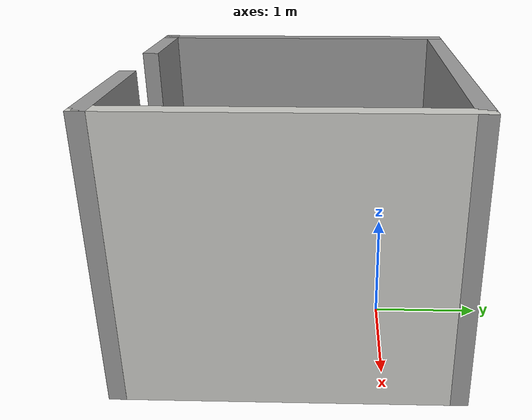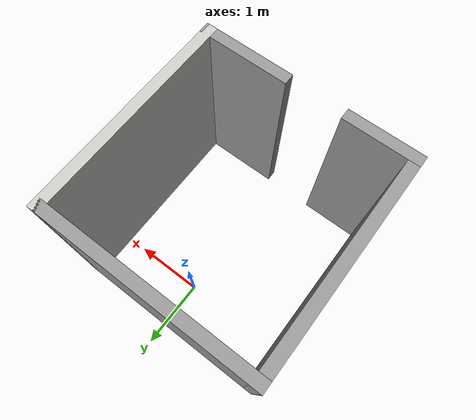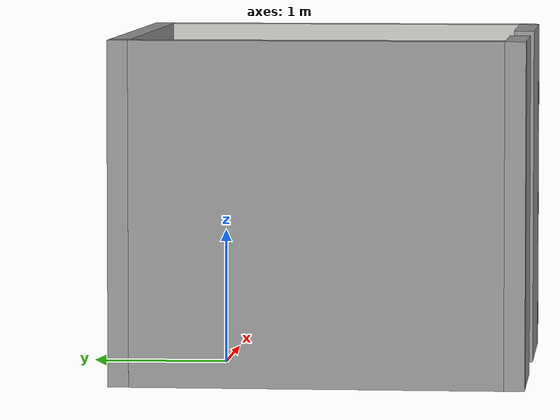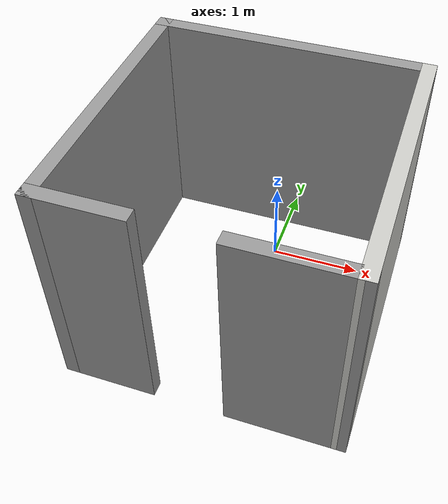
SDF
<?xml version='1.0'?>
<sdf version='1.7'>
  <model name='B1'>
    <pose>-0.084849 -0.806903 0 0 -0 0</pose>
    <link name='Wall_10'>
      <collision name='Wall_10_Collision'>
        <geometry>
          <box>
            <size>3 0.15 2.5</size>
          </box>
        </geometry>
        <pose>0 0 1.25 0 -0 0</pose>
      </collision>
      <visual name='Wall_10_Visual'>
        <pose>0 0 1.25 0 -0 0</pose>
        <geometry>
          <box>
            <size>3 0.15 2.5</size>
          </box>
        </geometry>
        <material>
          <script>
            <uri>file://media/materials/scripts/gazebo.material</uri>
            <name>Gazebo/CeilingTiled</name>
          </script>
          <ambient>1 1 1 1</ambient>
        </material>
        <meta>
          <layer>0</layer>
        </meta>
      </visual>
      <pose>1.42485 -9.7e-05 0 0 -0 -1.5708</pose>
    </link>
    <link name='Wall_11'>
      <collision name='Wall_11_Collision'>
        <geometry>
          <box>
            <size>1.25 0.15 2.5</size>
          </box>
        </geometry>
        <pose>0 0 1.25 0 -0 0</pose>
      </collision>
      <visual name='Wall_11_Visual'>
        <pose>0 0 1.25 0 -0 0</pose>
        <geometry>
          <box>
            <size>1.25 0.15 2.5</size>
          </box>
        </geometry>
        <material>
          <script>
            <uri>file://media/materials/scripts/gazebo.material</uri>
            <name>Gazebo/Grey</name>
          </script>
          <ambient>1 1 1 1</ambient>
        </material>
        <meta>
          <layer>0</layer>
        </meta>
      </visual>
      <pose>0.874996 -1.425 0 0 -0 3.14141</pose>
    </link>
    <link name='Wall_7'>
      <collision name='Wall_7_Collision'>
        <geometry>
          <box>
            <size>1 0.15 2.5</size>
          </box>
        </geometry>
        <pose>0 0 1.25 0 -0 0</pose>
      </collision>
      <visual name='Wall_7_Visual'>
        <pose>0 0 1.25 0 -0 0</pose>
        <geometry>
          <box>
            <size>1 0.15 2.5</size>
          </box>
        </geometry>
        <material>
          <script>
            <uri>file://media/materials/scripts/gazebo.material</uri>
            <name>Gazebo/Grey</name>
          </script>
          <ambient>1 1 1 1</ambient>
        </material>
        <meta>
          <layer>0</layer>
        </meta>
      </visual>
      <pose>-0.999857 -1.42489 0 0 -0 3.14159</pose>
    </link>
    <link name='Wall_8'>
      <collision name='Wall_8_Collision'>
        <geometry>
          <box>
            <size>3 0.15 2.5</size>
          </box>
        </geometry>
        <pose>0 0 1.25 0 -0 0</pose>
      </collision>
      <visual name='Wall_8_Visual'>
        <pose>0 0 1.25 0 -0 0</pose>
        <geometry>
          <box>
            <size>3 0.15 2.5</size>
          </box>
        </geometry>
        <material>
          <script>
            <uri>file://media/materials/scripts/gazebo.material</uri>
            <name>Gazebo/Grey</name>
          </script>
          <ambient>1 1 1 1</ambient>
        </material>
        <meta>
          <layer>0</layer>
        </meta>
      </visual>
      <pose>-1.42486 0.000106 0 0 -0 1.5708</pose>
    </link>
    <link name='Wall_9'>
      <collision name='Wall_9_Collision'>
        <geometry>
          <box>
            <size>3 0.15 2.5</size>
          </box>
        </geometry>
        <pose>0 0 1.25 0 -0 0</pose>
      </collision>
      <visual name='Wall_9_Visual'>
        <pose>0 0 1.25 0 -0 0</pose>
        <geometry>
          <box>
            <size>3 0.15 2.5</size>
          </box>
        </geometry>
        <material>
          <script>
            <uri>file://media/materials/scripts/gazebo.material</uri>
            <name>Gazebo/Grey</name>
          </script>
          <ambient>1 1 1 1</ambient>
        </material>
        <meta>
          <layer>0</layer>
        </meta>
      </visual>
      <pose>-4e-06 1.425 0 0 -0 -7.1e-05</pose>
    </link>
    <static>1</static>
  </model>
</sdf>
